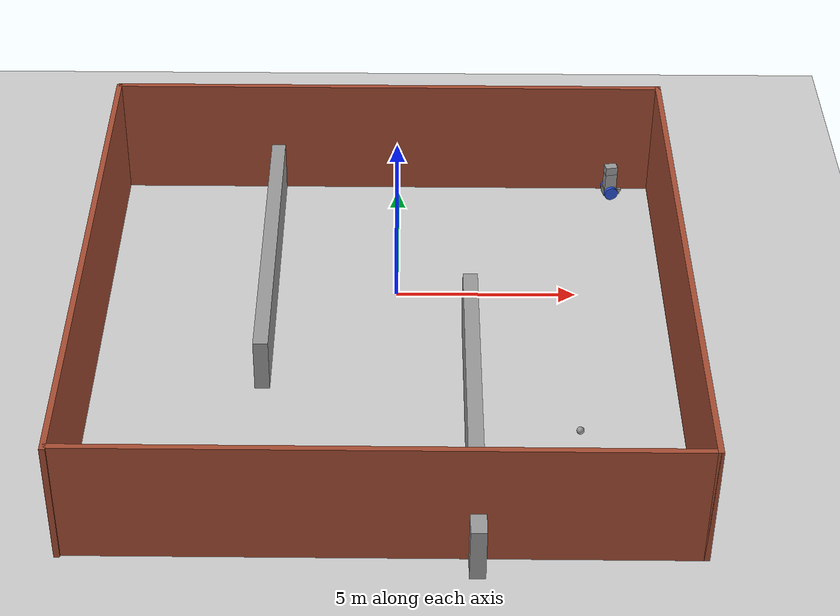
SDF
<sdf version="1.6">
 <world name="default">
  <plugin name="welcome_message" filename="libwelcome_message.so"/>
  <light name="sun" type="directional">
   <pose>0 0 10 0 -0 0</pose>
   <diffuse>0.8 0.8 0.8 1</diffuse>
   <specular>0.2 0.2 0.2 1</specular>
   <attenuation>
    <range>1000</range>
    <constant>0.9</constant>
    <linear>0.01</linear>
    <quadratic>0.001</quadratic>
   </attenuation>
   <direction>-0.5 0.1 -0.9</direction>
  </light>
  <model name="ground_plane">
   <static>1</static>
   <link name="link">
    <collision name="collision">
     <geometry><plane><normal>0 0 1</normal><size>100 100</size></plane></geometry>
     <surface>
      <contact><collide_bitmask>65535</collide_bitmask></contact>
      <friction><ode><mu>100</mu><mu2>50</mu2></ode></friction>
     </surface>
    </collision>
    <visual name="visual">
     <cast_shadows>0</cast_shadows>
     <geometry><plane><normal>0 0 1</normal><size>100 100</size></plane></geometry>
     <material>
      <script><uri>file://media/materials/scripts/gazebo.material</uri><name>Gazebo/Grey</name></script>
     </material>
    </visual>
   </link>
  </model>
  <gravity>0 0 -9.8</gravity>
  <magnetic_field>6e-06 2.3e-05 -4.2e-05</magnetic_field>
  <atmosphere type="adiabatic"/>
  <physics name="default_physics" default="0" type="ode">
   <max_step_size>0.001</max_step_size>
   <real_time_factor>1</real_time_factor>
   <real_time_update_rate>1000</real_time_update_rate>
  </physics>
  <scene><ambient>0.4 0.4 0.4 1</ambient><background>0.7 0.7 0.7 1</background><shadows>1</shadows></scene>
  <spherical_coordinates>
   <surface_model>EARTH_WGS84</surface_model>
   <latitude_deg>0</latitude_deg>
   <longitude_deg>0</longitude_deg>
   <elevation>0</elevation>
   <heading_deg>0</heading_deg>
  </spherical_coordinates>
  <model name="myrobot">
   <link name="link_2_clone">
    <pose>-0.078571 1e-06 -0.125 0 -0 0</pose>
    <inertial>
     <mass>0.0343685</mass>
     <inertia>
      <ixx>0.00054142</ixx>
      <ixy>0</ixy>
      <ixz>0</ixz>
      <iyy>0.00061935</iyy>
      <iyz>0</iyz>
      <izz>0.00085347</izz>
     </inertia>
    </inertial>
    <visual name="visual">
     <geometry><box><size>0.4 0.3 0.2</size></box></geometry>
     <material>
      <lighting>1</lighting>
      <script><uri>file://media/materials/scripts/gazebo.material</uri><name>Gazebo/Grey</name></script>
      <shader type="pixel"><normal_map>__default__</normal_map></shader>
      <ambient>0.3 0.3 0.3 1</ambient>
      <diffuse>0.7 0.7 0.7 1</diffuse>
      <specular>0.01 0.01 0.01 1</specular>
      <emissive>0 0 0 1</emissive>
     </material>
    </visual>
    <collision name="collision">
     <geometry><box><size>0.4 0.3 0.2</size></box></geometry>
     <surface>
      <friction>
       <ode><mu>1</mu><mu2>1</mu2><fdir1>0 0 0</fdir1><slip1>0</slip1><slip2>0</slip2></ode>
       <torsional>
        <coefficient>1</coefficient>
        <patch_radius>0</patch_radius>
        <surface_radius>0</surface_radius>
        <use_patch_radius>1</use_patch_radius>
        <ode><slip>0</slip></ode>
       </torsional>
      </friction>
      <bounce><restitution_coefficient>0</restitution_coefficient><threshold>1e+06</threshold></bounce>
      <contact>
       <collide_without_contact>0</collide_without_contact>
       <collide_without_contact_bitmask>1</collide_without_contact_bitmask>
       <collide_bitmask>1</collide_bitmask>
       <ode>
        <soft_cfm>0</soft_cfm>
        <soft_erp>0.2</soft_erp>
        <kp>1e+13</kp>
        <kd>1</kd>
        <max_vel>0.01</max_vel>
        <min_depth>0</min_depth>
       </ode>
       <bullet>
        <split_impulse>1</split_impulse>
        <split_impulse_penetration_threshold>-0.01</split_impulse_penetration_threshold>
        <soft_cfm>0</soft_cfm>
        <soft_erp>0.2</soft_erp>
        <kp>1e+13</kp>
        <kd>1</kd>
       </bullet>
      </contact>
     </surface>
    </collision>
   </link>
   <link name="link_2_clone_clone">
    <pose>0.196429 1e-06 -0.175 0 -0 0</pose>
    <inertial>
     <mass>0.0343685</mass>
     <inertia>
      <ixx>0.00054142</ixx>
      <ixy>0</ixy>
      <ixz>0</ixz>
      <iyy>0.00061935</iyy>
      <iyz>0</iyz>
      <izz>0.00085347</izz>
     </inertia>
    </inertial>
    <visual name="visual">
     <geometry><box><size>0.15 0.08 0.1</size></box></geometry>
     <material>
      <lighting>1</lighting>
      <script><uri>file://media/materials/scripts/gazebo.material</uri><name>Gazebo/Grey</name></script>
      <shader type="pixel"><normal_map>__default__</normal_map></shader>
      <ambient>0.3 0.3 0.3 1</ambient>
      <diffuse>0.7 0.7 0.7 1</diffuse>
      <specular>0.01 0.01 0.01 1</specular>
      <emissive>0 0 0 1</emissive>
     </material>
    </visual>
    <collision name="collision">
     <geometry><box><size>0.15 0.08 0.1</size></box></geometry>
     <surface>
      <friction>
       <ode><mu>1</mu><mu2>1</mu2><fdir1>0 0 0</fdir1><slip1>0</slip1><slip2>0</slip2></ode>
       <torsional>
        <coefficient>1</coefficient>
        <patch_radius>0</patch_radius>
        <surface_radius>0</surface_radius>
        <use_patch_radius>1</use_patch_radius>
        <ode><slip>0</slip></ode>
       </torsional>
      </friction>
      <bounce><restitution_coefficient>0</restitution_coefficient><threshold>1e+06</threshold></bounce>
      <contact>
       <collide_without_contact>0</collide_without_contact>
       <collide_without_contact_bitmask>1</collide_without_contact_bitmask>
       <collide_bitmask>1</collide_bitmask>
       <ode>
        <soft_cfm>0</soft_cfm>
        <soft_erp>0.2</soft_erp>
        <kp>1e+13</kp>
        <kd>1</kd>
        <max_vel>0.01</max_vel>
        <min_depth>0</min_depth>
       </ode>
       <bullet>
        <split_impulse>1</split_impulse>
        <split_impulse_penetration_threshold>-0.01</split_impulse_penetration_threshold>
        <soft_cfm>0</soft_cfm>
        <soft_erp>0.2</soft_erp>
        <kp>1e+13</kp>
        <kd>1</kd>
       </bullet>
      </contact>
     </surface>
    </collision>
   </link>
   <link name="link_2_clone_clone_0">
    <pose>-0.078571 1e-06 0.225 0 -0 0</pose>
    <inertial>
     <mass>0.0343685</mass>
     <inertia>
      <ixx>0.00054142</ixx>
      <ixy>0</ixy>
      <ixz>0</ixz>
      <iyy>0.00061935</iyy>
      <iyz>0</iyz>
      <izz>0.00085347</izz>
     </inertia>
    </inertial>
    <visual name="visual">
     <geometry><box><size>0.35 0.25 0.5</size></box></geometry>
     <material>
      <lighting>1</lighting>
      <script><uri>file://media/materials/scripts/gazebo.material</uri><name>Gazebo/Grey</name></script>
      <shader type="pixel"><normal_map>__default__</normal_map></shader>
      <ambient>0.3 0.3 0.3 1</ambient>
      <diffuse>0.7 0.7 0.7 1</diffuse>
      <specular>0.01 0.01 0.01 1</specular>
      <emissive>0 0 0 1</emissive>
     </material>
    </visual>
    <collision name="collision">
     <geometry><box><size>0.35 0.25 0.5</size></box></geometry>
     <surface>
      <friction>
       <ode><mu>1</mu><mu2>1</mu2><fdir1>0 0 0</fdir1><slip1>0</slip1><slip2>0</slip2></ode>
       <torsional>
        <coefficient>1</coefficient>
        <patch_radius>0</patch_radius>
        <surface_radius>0</surface_radius>
        <use_patch_radius>1</use_patch_radius>
        <ode><slip>0</slip></ode>
       </torsional>
      </friction>
      <bounce><restitution_coefficient>0</restitution_coefficient><threshold>1e+06</threshold></bounce>
      <contact>
       <collide_without_contact>0</collide_without_contact>
       <collide_without_contact_bitmask>1</collide_without_contact_bitmask>
       <collide_bitmask>1</collide_bitmask>
       <ode>
        <soft_cfm>0</soft_cfm>
        <soft_erp>0.2</soft_erp>
        <kp>1e+13</kp>
        <kd>1</kd>
        <max_vel>0.01</max_vel>
        <min_depth>0</min_depth>
       </ode>
       <bullet>
        <split_impulse>1</split_impulse>
        <split_impulse_penetration_threshold>-0.01</split_impulse_penetration_threshold>
        <soft_cfm>0</soft_cfm>
        <soft_erp>0.2</soft_erp>
        <kp>1e+13</kp>
        <kd>1</kd>
       </bullet>
      </contact>
     </surface>
    </collision>
   </link>
   <link name="link_2_clone_clone_0_clone">
    <pose>-0.078571 1e-06 0.6 0 -0 0</pose>
    <inertial>
     <mass>0.0343685</mass>
     <inertia>
      <ixx>0.00054142</ixx>
      <ixy>0</ixy>
      <ixz>0</ixz>
      <iyy>0.00061935</iyy>
      <iyz>0</iyz>
      <izz>0.00085347</izz>
     </inertia>
    </inertial>
    <visual name="visual">
     <geometry><box><size>0.35 0.25 0.25</size></box></geometry>
     <material>
      <lighting>1</lighting>
      <script><uri>file://media/materials/scripts/gazebo.material</uri><name>Gazebo/Grey</name></script>
      <shader type="pixel"><normal_map>__default__</normal_map></shader>
      <ambient>0.3 0.3 0.3 1</ambient>
      <diffuse>0.7 0.7 0.7 1</diffuse>
      <specular>0.01 0.01 0.01 1</specular>
      <emissive>0 0 0 1</emissive>
     </material>
    </visual>
    <collision name="collision">
     <geometry><box><size>0.35 0.25 0.25</size></box></geometry>
     <surface>
      <friction>
       <ode><mu>1</mu><mu2>1</mu2><fdir1>0 0 0</fdir1><slip1>0</slip1><slip2>0</slip2></ode>
       <torsional>
        <coefficient>1</coefficient>
        <patch_radius>0</patch_radius>
        <surface_radius>0</surface_radius>
        <use_patch_radius>1</use_patch_radius>
        <ode><slip>0</slip></ode>
       </torsional>
      </friction>
      <bounce><restitution_coefficient>0</restitution_coefficient><threshold>1e+06</threshold></bounce>
      <contact>
       <collide_without_contact>0</collide_without_contact>
       <collide_without_contact_bitmask>1</collide_without_contact_bitmask>
       <collide_bitmask>1</collide_bitmask>
       <ode>
        <soft_cfm>0</soft_cfm>
        <soft_erp>0.2</soft_erp>
        <kp>1e+13</kp>
        <kd>1</kd>
        <max_vel>0.01</max_vel>
        <min_depth>0</min_depth>
       </ode>
       <bullet>
        <split_impulse>1</split_impulse>
        <split_impulse_penetration_threshold>-0.01</split_impulse_penetration_threshold>
        <soft_cfm>0</soft_cfm>
        <soft_erp>0.2</soft_erp>
        <kp>1e+13</kp>
        <kd>1</kd>
       </bullet>
      </contact>
     </surface>
    </collision>
   </link>
   <link name="link_3_clone">
    <pose>-0.078571 0.20002 -0.125 1.5707 -0 0</pose>
    <inertial>
     <mass>1</mass>
     <inertia><ixx>0.145833</ixx><ixy>0</ixy><ixz>0</ixz><iyy>0.145833</iyy><iyz>0</iyz><izz>0.125</izz></inertia>
    </inertial>
    <visual name="visual">
     <geometry><cylinder><radius>0.2</radius><length>0.1</length></cylinder></geometry>
     <material>
      <lighting>1</lighting>
      <script><uri>file://media/materials/scripts/gazebo.material</uri><name>Gazebo/BlueLaser</name></script>
      <shader type="pixel"><normal_map>__default__</normal_map></shader>
      <ambient>0.3 0.3 0.3 1</ambient>
      <diffuse>0.7 0.7 0.7 1</diffuse>
      <specular>0.01 0.01 0.01 1</specular>
      <emissive>0 0 0 1</emissive>
     </material>
    </visual>
    <collision name="collision">
     <geometry><cylinder><radius>0.2</radius><length>0.1</length></cylinder></geometry>
     <surface>
      <friction>
       <ode><mu>1</mu><mu2>1</mu2><fdir1>0 0 0</fdir1><slip1>0</slip1><slip2>0</slip2></ode>
       <torsional>
        <coefficient>1</coefficient>
        <patch_radius>0</patch_radius>
        <surface_radius>0</surface_radius>
        <use_patch_radius>1</use_patch_radius>
        <ode><slip>0</slip></ode>
       </torsional>
      </friction>
      <bounce><restitution_coefficient>0</restitution_coefficient><threshold>1e+06</threshold></bounce>
      <contact>
       <collide_without_contact>0</collide_without_contact>
       <collide_without_contact_bitmask>1</collide_without_contact_bitmask>
       <collide_bitmask>1</collide_bitmask>
       <ode>
        <soft_cfm>0</soft_cfm>
        <soft_erp>0.2</soft_erp>
        <kp>1e+13</kp>
        <kd>1</kd>
        <max_vel>0.01</max_vel>
        <min_depth>0</min_depth>
       </ode>
       <bullet>
        <split_impulse>1</split_impulse>
        <split_impulse_penetration_threshold>-0.01</split_impulse_penetration_threshold>
        <soft_cfm>0</soft_cfm>
        <soft_erp>0.2</soft_erp>
        <kp>1e+13</kp>
        <kd>1</kd>
       </bullet>
      </contact>
     </surface>
    </collision>
   </link>
   <link name="link_3_clone_clone">
    <pose>-0.078571 -0.200018 -0.125 1.5707 -0 0</pose>
    <inertial>
     <mass>1</mass>
     <inertia><ixx>0.145833</ixx><ixy>0</ixy><ixz>0</ixz><iyy>0.145833</iyy><iyz>0</iyz><izz>0.125</izz></inertia>
    </inertial>
    <visual name="visual">
     <geometry><cylinder><radius>0.2</radius><length>0.1</length></cylinder></geometry>
     <material>
      <lighting>1</lighting>
      <script><uri>file://media/materials/scripts/gazebo.material</uri><name>Gazebo/BlueLaser</name></script>
      <shader type="pixel"><normal_map>__default__</normal_map></shader>
      <ambient>0.3 0.3 0.3 1</ambient>
      <diffuse>0.7 0.7 0.7 1</diffuse>
      <specular>0.01 0.01 0.01 1</specular>
      <emissive>0 0 0 1</emissive>
     </material>
    </visual>
    <collision name="collision">
     <geometry><cylinder><radius>0.2</radius><length>0.1</length></cylinder></geometry>
     <surface>
      <friction>
       <ode><mu>1</mu><mu2>1</mu2><fdir1>0 0 0</fdir1><slip1>0</slip1><slip2>0</slip2></ode>
       <torsional>
        <coefficient>1</coefficient>
        <patch_radius>0</patch_radius>
        <surface_radius>0</surface_radius>
        <use_patch_radius>1</use_patch_radius>
        <ode><slip>0</slip></ode>
       </torsional>
      </friction>
      <bounce><restitution_coefficient>0</restitution_coefficient><threshold>1e+06</threshold></bounce>
      <contact>
       <collide_without_contact>0</collide_without_contact>
       <collide_without_contact_bitmask>1</collide_without_contact_bitmask>
       <collide_bitmask>1</collide_bitmask>
       <ode>
        <soft_cfm>0</soft_cfm>
        <soft_erp>0.2</soft_erp>
        <kp>1e+13</kp>
        <kd>1</kd>
        <max_vel>0.01</max_vel>
        <min_depth>0</min_depth>
       </ode>
       <bullet>
        <split_impulse>1</split_impulse>
        <split_impulse_penetration_threshold>-0.01</split_impulse_penetration_threshold>
        <soft_cfm>0</soft_cfm>
        <soft_erp>0.2</soft_erp>
        <kp>1e+13</kp>
        <kd>1</kd>
       </bullet>
      </contact>
     </surface>
    </collision>
   </link>
   <link name="link_6_clone">
    <pose>0.196429 1e-06 -0.275 0 -0 0</pose>
    <inertial>
     <mass>1</mass>
     <inertia><ixx>0.1</ixx><ixy>0</ixy><ixz>0</ixz><iyy>0.1</iyy><iyz>0</iyz><izz>0.1</izz></inertia>
    </inertial>
    <visual name="visual">
     <geometry><sphere><radius>0.05</radius></sphere></geometry>
     <material>
      <lighting>1</lighting>
      <script><uri>file://media/materials/scripts/gazebo.material</uri><name>Gazebo/Grey</name></script>
      <shader type="pixel"><normal_map>__default__</normal_map></shader>
      <ambient>0.3 0.3 0.3 1</ambient>
      <diffuse>0.7 0.7 0.7 1</diffuse>
      <specular>0.01 0.01 0.01 1</specular>
      <emissive>0 0 0 1</emissive>
     </material>
    </visual>
    <collision name="collision">
     <geometry><sphere><radius>0.05</radius></sphere></geometry>
     <surface>
      <friction>
       <ode><mu>1</mu><mu2>1</mu2><fdir1>0 0 0</fdir1><slip1>0</slip1><slip2>0</slip2></ode>
       <torsional>
        <coefficient>1</coefficient>
        <patch_radius>0</patch_radius>
        <surface_radius>0</surface_radius>
        <use_patch_radius>1</use_patch_radius>
        <ode><slip>0</slip></ode>
       </torsional>
      </friction>
      <bounce><restitution_coefficient>0</restitution_coefficient><threshold>1e+06</threshold></bounce>
      <contact>
       <collide_without_contact>0</collide_without_contact>
       <collide_without_contact_bitmask>1</collide_without_contact_bitmask>
       <collide_bitmask>1</collide_bitmask>
       <ode>
        <soft_cfm>0</soft_cfm>
        <soft_erp>0.2</soft_erp>
        <kp>1e+13</kp>
        <kd>1</kd>
        <max_vel>0.01</max_vel>
        <min_depth>0</min_depth>
       </ode>
       <bullet>
        <split_impulse>1</split_impulse>
        <split_impulse_penetration_threshold>-0.01</split_impulse_penetration_threshold>
        <soft_cfm>0</soft_cfm>
        <soft_erp>0.2</soft_erp>
        <kp>1e+13</kp>
        <kd>1</kd>
       </bullet>
      </contact>
     </surface>
    </collision>
   </link>
   <joint name="link_2_clone_JOINT_0" type="revolute">
    <parent>link_2_clone</parent>
    <child>link_3_clone_clone</child>
    <axis>
     <xyz>0 0 1</xyz>
     <use_parent_model_frame>0</use_parent_model_frame>
     <limit>
      <lower>-1.79769e+308</lower>
      <upper>1.79769e+308</upper>
      <effort>-1</effort>
      <velocity>-1</velocity>
     </limit>
     <dynamics>
      <spring_reference>0</spring_reference>
      <spring_stiffness>0</spring_stiffness>
      <damping>0</damping>
     </dynamics>
    </axis>
    <physics>
     <ode><limit><cfm>0</cfm><erp>0.2</erp></limit><suspension><cfm>0</cfm><erp>0.2</erp></suspension></ode>
    </physics>
   </joint>
   <joint name="link_2_clone_JOINT_1" type="revolute">
    <parent>link_2_clone</parent>
    <child>link_3_clone</child>
    <axis>
     <xyz>0 0 -1</xyz>
     <use_parent_model_frame>0</use_parent_model_frame>
     <limit>
      <lower>-1.79769e+308</lower>
      <upper>1.79769e+308</upper>
      <effort>-1</effort>
      <velocity>-1</velocity>
     </limit>
     <dynamics>
      <spring_reference>0</spring_reference>
      <spring_stiffness>0</spring_stiffness>
      <damping>0</damping>
      <friction>0</friction>
     </dynamics>
    </axis>
    <physics>
     <ode><limit><cfm>0</cfm><erp>0.2</erp></limit><suspension><cfm>0</cfm><erp>0.2</erp></suspension></ode>
    </physics>
   </joint>
   <joint name="link_2_clone_JOINT_2" type="fixed">
    <parent>link_2_clone</parent>
    <child>link_2_clone_clone</child>
    <physics>
     <ode><limit><cfm>0</cfm><erp>0.2</erp></limit><suspension><cfm>0</cfm><erp>0.2</erp></suspension></ode>
    </physics>
   </joint>
   <joint name="link_2_clone_JOINT_4" type="fixed">
    <parent>link_2_clone</parent>
    <child>link_2_clone_clone_0</child>
    <physics>
     <ode><limit><cfm>0</cfm><erp>0.2</erp></limit><suspension><cfm>0</cfm><erp>0.2</erp></suspension></ode>
    </physics>
   </joint>
   <joint name="link_2_clone_clone_0_JOINT_5" type="revolute">
    <parent>link_2_clone_clone_0</parent>
    <child>link_2_clone_clone_0_clone</child>
    <axis>
     <xyz>0 0 1</xyz>
     <use_parent_model_frame>0</use_parent_model_frame>
     <limit>
      <lower>-1.79769e+308</lower>
      <upper>1.79769e+308</upper>
      <effort>-1</effort>
      <velocity>-1</velocity>
     </limit>
     <dynamics>
      <spring_reference>0</spring_reference>
      <spring_stiffness>0</spring_stiffness>
      <damping>0</damping>
     </dynamics>
    </axis>
    <physics>
     <ode><limit><cfm>0</cfm><erp>0.2</erp></limit><suspension><cfm>0</cfm><erp>0.2</erp></suspension></ode>
    </physics>
   </joint>
   <joint name="link_2_clone_clone_JOINT_3" type="ball">
    <parent>link_2_clone_clone</parent>
    <child>link_6_clone</child>
    <physics>
     <ode><limit><cfm>0</cfm><erp>0.2</erp></limit><suspension><cfm>0</cfm><erp>0.2</erp></suspension></ode>
    </physics>
   </joint>
   <static>0</static>
   <pose>6.38441 4.91373 0.325001 5.3e-05 8e-06 0.195482</pose>
  </model>
  <model name="mybuilding_0_0">
   <link name="Wall_4">
    <pose>0 -7.8 0 0 -0 0</pose>
    <visual name="Wall_4_Visual">
     <pose>0 0 1.75 0 -0 0</pose>
     <geometry><box><size>15.75 0.15 3.5</size></box></geometry>
     <material>
      <script><uri>file://media/materials/scripts/gazebo.material</uri><name>Gazebo/Bricks</name></script>
      <ambient>1 1 1 1</ambient>
      <diffuse>1 1 1 1</diffuse>
      <specular>0.2 0.2 0.2 1</specular>
      <emissive>0 0 0 1</emissive>
     </material>
     <meta><layer>0</layer></meta>
    </visual>
    <collision name="Wall_4_Collision">
     <pose>0 0 1.75 0 -0 0</pose>
     <geometry><box><size>15.75 0.15 3.5</size></box></geometry>
     <surface>
      <friction>
       <ode><mu>1</mu><mu2>1</mu2><fdir1>0 0 0</fdir1><slip1>0</slip1><slip2>0</slip2></ode>
       <torsional>
        <coefficient>1</coefficient>
        <patch_radius>0</patch_radius>
        <surface_radius>0</surface_radius>
        <use_patch_radius>1</use_patch_radius>
        <ode><slip>0</slip></ode>
       </torsional>
      </friction>
      <bounce><restitution_coefficient>0</restitution_coefficient><threshold>1e+06</threshold></bounce>
      <contact>
       <collide_without_contact>0</collide_without_contact>
       <collide_without_contact_bitmask>1</collide_without_contact_bitmask>
       <collide_bitmask>1</collide_bitmask>
       <ode>
        <soft_cfm>0</soft_cfm>
        <soft_erp>0.2</soft_erp>
        <kp>1e+13</kp>
        <kd>1</kd>
        <max_vel>0.01</max_vel>
        <min_depth>0</min_depth>
       </ode>
       <bullet>
        <split_impulse>1</split_impulse>
        <split_impulse_penetration_threshold>-0.01</split_impulse_penetration_threshold>
        <soft_cfm>0</soft_cfm>
        <soft_erp>0.2</soft_erp>
        <kp>1e+13</kp>
        <kd>1</kd>
       </bullet>
      </contact>
     </surface>
    </collision>
   </link>
   <link name="Wall_5">
    <pose>7.8 0 0 0 -0 1.5708</pose>
    <visual name="Wall_5_Visual">
     <pose>0 0 1.75 0 -0 0</pose>
     <geometry><box><size>15.75 0.15 3.5</size></box></geometry>
     <material>
      <script><uri>file://media/materials/scripts/gazebo.material</uri><name>Gazebo/Bricks</name></script>
      <ambient>1 1 1 1</ambient>
      <diffuse>1 1 1 1</diffuse>
      <specular>0.2 0.2 0.2 1</specular>
      <emissive>0 0 0 1</emissive>
     </material>
     <meta><layer>0</layer></meta>
    </visual>
    <collision name="Wall_5_Collision">
     <pose>0 0 1.75 0 -0 0</pose>
     <geometry><box><size>15.75 0.15 3.5</size></box></geometry>
     <surface>
      <friction>
       <ode><mu>1</mu><mu2>1</mu2><fdir1>0 0 0</fdir1><slip1>0</slip1><slip2>0</slip2></ode>
       <torsional>
        <coefficient>1</coefficient>
        <patch_radius>0</patch_radius>
        <surface_radius>0</surface_radius>
        <use_patch_radius>1</use_patch_radius>
        <ode><slip>0</slip></ode>
       </torsional>
      </friction>
      <bounce><restitution_coefficient>0</restitution_coefficient><threshold>1e+06</threshold></bounce>
      <contact>
       <collide_without_contact>0</collide_without_contact>
       <collide_without_contact_bitmask>1</collide_without_contact_bitmask>
       <collide_bitmask>1</collide_bitmask>
       <ode>
        <soft_cfm>0</soft_cfm>
        <soft_erp>0.2</soft_erp>
        <kp>1e+13</kp>
        <kd>1</kd>
        <max_vel>0.01</max_vel>
        <min_depth>0</min_depth>
       </ode>
       <bullet>
        <split_impulse>1</split_impulse>
        <split_impulse_penetration_threshold>-0.01</split_impulse_penetration_threshold>
        <soft_cfm>0</soft_cfm>
        <soft_erp>0.2</soft_erp>
        <kp>1e+13</kp>
        <kd>1</kd>
       </bullet>
      </contact>
     </surface>
    </collision>
   </link>
   <link name="Wall_5_clone">
    <pose>-7.85298 -0.055422 0 0 -0 1.5708</pose>
    <visual name="Wall_5_Visual">
     <pose>0 0 1.75 0 -0 0</pose>
     <geometry><box><size>15.75 0.15 3.5</size></box></geometry>
     <material>
      <script><uri>file://media/materials/scripts/gazebo.material</uri><name>Gazebo/Bricks</name></script>
      <ambient>1 1 1 1</ambient>
      <diffuse>1 1 1 1</diffuse>
      <specular>0.2 0.2 0.2 1</specular>
      <emissive>0 0 0 1</emissive>
      <shader type="pixel"/>
     </material>
     <meta><layer>0</layer></meta>
    </visual>
    <collision name="Wall_5_Collision">
     <pose>0 0 1.75 0 -0 0</pose>
     <geometry><box><size>15.75 0.15 3.5</size></box></geometry>
     <surface>
      <friction>
       <ode><mu>1</mu><mu2>1</mu2><fdir1>0 0 0</fdir1><slip1>0</slip1><slip2>0</slip2></ode>
       <torsional>
        <coefficient>1</coefficient>
        <patch_radius>0</patch_radius>
        <surface_radius>0</surface_radius>
        <use_patch_radius>1</use_patch_radius>
        <ode><slip>0</slip></ode>
       </torsional>
      </friction>
      <bounce><restitution_coefficient>0</restitution_coefficient><threshold>1e+06</threshold></bounce>
      <contact>
       <collide_without_contact>0</collide_without_contact>
       <collide_without_contact_bitmask>1</collide_without_contact_bitmask>
       <collide_bitmask>1</collide_bitmask>
       <ode>
        <soft_cfm>0</soft_cfm>
        <soft_erp>0.2</soft_erp>
        <kp>1e+13</kp>
        <kd>1</kd>
        <max_vel>0.01</max_vel>
        <min_depth>0</min_depth>
       </ode>
       <bullet>
        <split_impulse>1</split_impulse>
        <split_impulse_penetration_threshold>-0.01</split_impulse_penetration_threshold>
        <soft_cfm>0</soft_cfm>
        <soft_erp>0.2</soft_erp>
        <kp>1e+13</kp>
        <kd>1</kd>
       </bullet>
      </contact>
     </surface>
    </collision>
   </link>
   <link name="Wall_6">
    <pose>0 7.8 0 0 -0 3.14159</pose>
    <visual name="Wall_6_Visual">
     <pose>0 0 1.75 0 -0 0</pose>
     <geometry><box><size>15.75 0.15 3.5</size></box></geometry>
     <material>
      <script><uri>file://media/materials/scripts/gazebo.material</uri><name>Gazebo/Bricks</name></script>
      <ambient>1 1 1 1</ambient>
      <diffuse>1 1 1 1</diffuse>
      <specular>0.2 0.2 0.2 1</specular>
      <emissive>0 0 0 1</emissive>
     </material>
     <meta><layer>0</layer></meta>
    </visual>
    <collision name="Wall_6_Collision">
     <pose>0 0 1.75 0 -0 0</pose>
     <geometry><box><size>15.75 0.15 3.5</size></box></geometry>
     <surface>
      <friction>
       <ode><mu>1</mu><mu2>1</mu2><fdir1>0 0 0</fdir1><slip1>0</slip1><slip2>0</slip2></ode>
       <torsional>
        <coefficient>1</coefficient>
        <patch_radius>0</patch_radius>
        <surface_radius>0</surface_radius>
        <use_patch_radius>1</use_patch_radius>
        <ode><slip>0</slip></ode>
       </torsional>
      </friction>
      <bounce><restitution_coefficient>0</restitution_coefficient><threshold>1e+06</threshold></bounce>
      <contact>
       <collide_without_contact>0</collide_without_contact>
       <collide_without_contact_bitmask>1</collide_without_contact_bitmask>
       <collide_bitmask>1</collide_bitmask>
       <ode>
        <soft_cfm>0</soft_cfm>
        <soft_erp>0.2</soft_erp>
        <kp>1e+13</kp>
        <kd>1</kd>
        <max_vel>0.01</max_vel>
        <min_depth>0</min_depth>
       </ode>
       <bullet>
        <split_impulse>1</split_impulse>
        <split_impulse_penetration_threshold>-0.01</split_impulse_penetration_threshold>
        <soft_cfm>0</soft_cfm>
        <soft_erp>0.2</soft_erp>
        <kp>1e+13</kp>
        <kd>1</kd>
       </bullet>
      </contact>
     </surface>
    </collision>
   </link>
   <link name="link_0">
    <pose>-3.27157 3.39415 0.5 0 -0 0</pose>
    <inertial>
     <mass>1</mass>
     <inertia>
      <ixx>0.166667</ixx>
      <ixy>0</ixy>
      <ixz>0</ixz>
      <iyy>0.166667</iyy>
      <iyz>0</iyz>
      <izz>0.166667</izz>
     </inertia>
    </inertial>
    <visual name="visual">
     <geometry><box><size>0.4 10 2</size></box></geometry>
     <material>
      <lighting>1</lighting>
      <script><uri>file://media/materials/scripts/gazebo.material</uri><name>Gazebo/Grey</name></script>
      <ambient>0.3 0.3 0.3 1</ambient>
      <diffuse>0.7 0.7 0.7 1</diffuse>
      <specular>0.01 0.01 0.01 1</specular>
      <emissive>0 0 0 1</emissive>
      <shader type="vertex"><normal_map>__default__</normal_map></shader>
     </material>
    </visual>
    <collision name="collision">
     <geometry><box><size>0.4 10 2</size></box></geometry>
     <surface>
      <friction>
       <ode><mu>1</mu><mu2>1</mu2><fdir1>0 0 0</fdir1><slip1>0</slip1><slip2>0</slip2></ode>
       <torsional>
        <coefficient>1</coefficient>
        <patch_radius>0</patch_radius>
        <surface_radius>0</surface_radius>
        <use_patch_radius>1</use_patch_radius>
        <ode><slip>0</slip></ode>
       </torsional>
      </friction>
      <bounce><restitution_coefficient>0</restitution_coefficient><threshold>1e+06</threshold></bounce>
      <contact>
       <collide_without_contact>0</collide_without_contact>
       <collide_without_contact_bitmask>1</collide_without_contact_bitmask>
       <collide_bitmask>1</collide_bitmask>
       <ode>
        <soft_cfm>0</soft_cfm>
        <soft_erp>0.2</soft_erp>
        <kp>1e+13</kp>
        <kd>1</kd>
        <max_vel>0.01</max_vel>
        <min_depth>0</min_depth>
       </ode>
       <bullet>
        <split_impulse>1</split_impulse>
        <split_impulse_penetration_threshold>-0.01</split_impulse_penetration_threshold>
        <soft_cfm>0</soft_cfm>
        <soft_erp>0.2</soft_erp>
        <kp>1e+13</kp>
        <kd>1</kd>
       </bullet>
      </contact>
     </surface>
    </collision>
   </link>
   <link name="link_0_clone">
    <pose>2.27132 -3.5209 0.5 0 -0 0</pose>
    <inertial>
     <mass>1</mass>
     <inertia>
      <ixx>0.166667</ixx>
      <ixy>0</ixy>
      <ixz>0</ixz>
      <iyy>0.166667</iyy>
      <iyz>0</iyz>
      <izz>0.166667</izz>
     </inertia>
    </inertial>
    <visual name="visual">
     <geometry><box><size>0.4 10 2</size></box></geometry>
     <material>
      <lighting>1</lighting>
      <script><uri>file://media/materials/scripts/gazebo.material</uri><name>Gazebo/Grey</name></script>
      <ambient>0.3 0.3 0.3 1</ambient>
      <diffuse>0.7 0.7 0.7 1</diffuse>
      <specular>0.01 0.01 0.01 1</specular>
      <emissive>0 0 0 1</emissive>
      <shader type="vertex"><normal_map>__default__</normal_map></shader>
     </material>
    </visual>
    <collision name="collision">
     <geometry><box><size>0.4 10 2</size></box></geometry>
     <surface>
      <friction>
       <ode><mu>1</mu><mu2>1</mu2><fdir1>0 0 0</fdir1><slip1>0</slip1><slip2>0</slip2></ode>
       <torsional>
        <coefficient>1</coefficient>
        <patch_radius>0</patch_radius>
        <surface_radius>0</surface_radius>
        <use_patch_radius>1</use_patch_radius>
        <ode><slip>0</slip></ode>
       </torsional>
      </friction>
      <bounce><restitution_coefficient>0</restitution_coefficient><threshold>1e+06</threshold></bounce>
      <contact>
       <collide_without_contact>0</collide_without_contact>
       <collide_without_contact_bitmask>1</collide_without_contact_bitmask>
       <collide_bitmask>1</collide_bitmask>
       <ode>
        <soft_cfm>0</soft_cfm>
        <soft_erp>0.2</soft_erp>
        <kp>1e+13</kp>
        <kd>1</kd>
        <max_vel>0.01</max_vel>
        <min_depth>0</min_depth>
       </ode>
       <bullet>
        <split_impulse>1</split_impulse>
        <split_impulse_penetration_threshold>-0.01</split_impulse_penetration_threshold>
        <soft_cfm>0</soft_cfm>
        <soft_erp>0.2</soft_erp>
        <kp>1e+13</kp>
        <kd>1</kd>
       </bullet>
      </contact>
     </surface>
    </collision>
   </link>
   <static>1</static>
   <pose>-0.27132 -2.4791 0 0 -0 0</pose>
  </model>
  <model name="my_ball_0">
   <link name="link_0_clone">
    <inertial>
     <mass>1</mass>
     <inertia><ixx>0.1</ixx><ixy>0</ixy><ixz>0</ixz><iyy>0.1</iyy><iyz>0</iyz><izz>0.1</izz></inertia>
    </inertial>
    <visual name="visual">
     <geometry><sphere><radius>0.1</radius></sphere></geometry>
     <material>
      <lighting>1</lighting>
      <script><uri>file://media/materials/scripts/gazebo.material</uri><name>Gazebo/Grey</name></script>
      <shader type="pixel"><normal_map>__default__</normal_map></shader>
      <ambient>1 1 1 1</ambient>
      <diffuse>1 1 1 1</diffuse>
      <specular>1 1 1 1</specular>
      <emissive>1 1 1 1</emissive>
     </material>
    </visual>
    <collision name="collision">
     <geometry><sphere><radius>0.1</radius></sphere></geometry>
     <surface>
      <friction>
       <ode><mu>1</mu><mu2>1</mu2><fdir1>0 0 0</fdir1><slip1>0</slip1><slip2>0</slip2></ode>
       <torsional>
        <coefficient>1</coefficient>
        <patch_radius>0</patch_radius>
        <surface_radius>0</surface_radius>
        <use_patch_radius>1</use_patch_radius>
        <ode><slip>0</slip></ode>
       </torsional>
      </friction>
      <bounce><restitution_coefficient>0</restitution_coefficient><threshold>1e+06</threshold></bounce>
      <contact>
       <collide_without_contact>0</collide_without_contact>
       <collide_without_contact_bitmask>1</collide_without_contact_bitmask>
       <collide_bitmask>1</collide_bitmask>
       <ode>
        <soft_cfm>0</soft_cfm>
        <soft_erp>0.2</soft_erp>
        <kp>1e+13</kp>
        <kd>1</kd>
        <max_vel>0.01</max_vel>
        <min_depth>0</min_depth>
       </ode>
       <bullet>
        <split_impulse>1</split_impulse>
        <split_impulse_penetration_threshold>-0.01</split_impulse_penetration_threshold>
        <soft_cfm>0</soft_cfm>
        <soft_erp>0.2</soft_erp>
        <kp>1e+13</kp>
        <kd>1</kd>
       </bullet>
      </contact>
     </surface>
    </collision>
   </link>
   <static>0</static>
   <pose>4.77868 -5.79936 0.1 1.72854 -0.286218 2.95894</pose>
  </model>
 </world>
</sdf>
